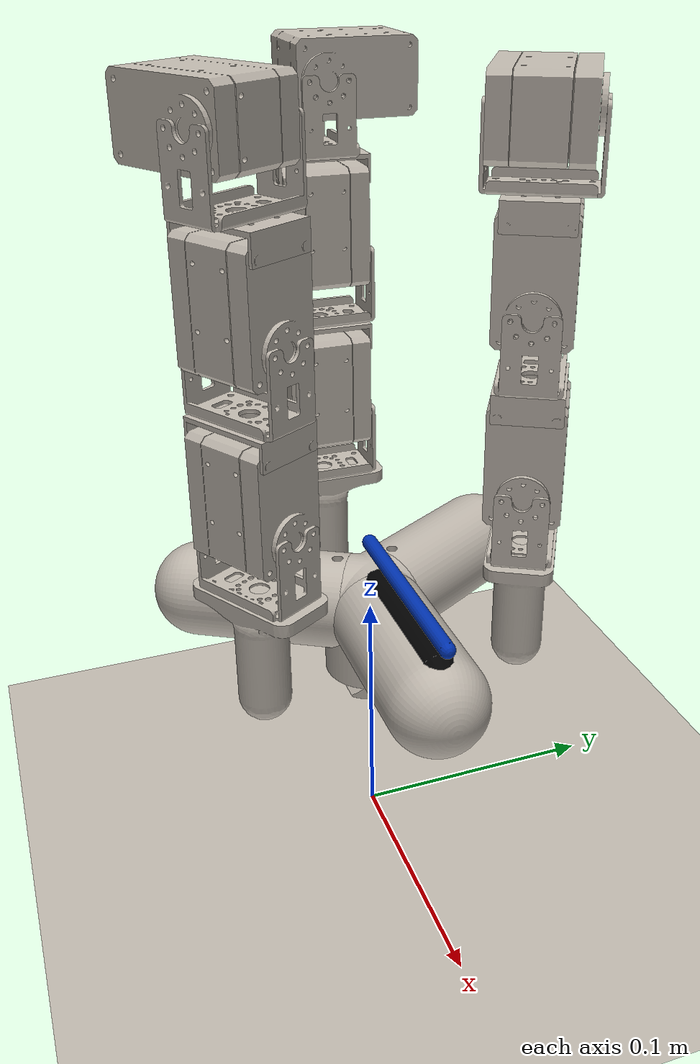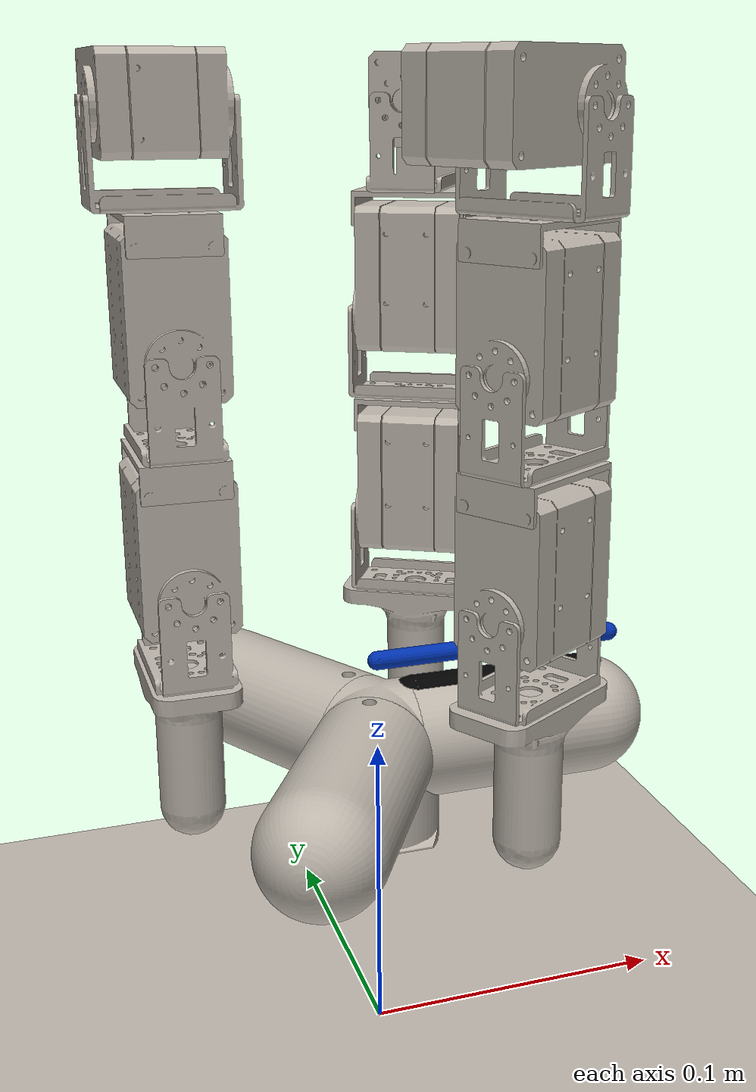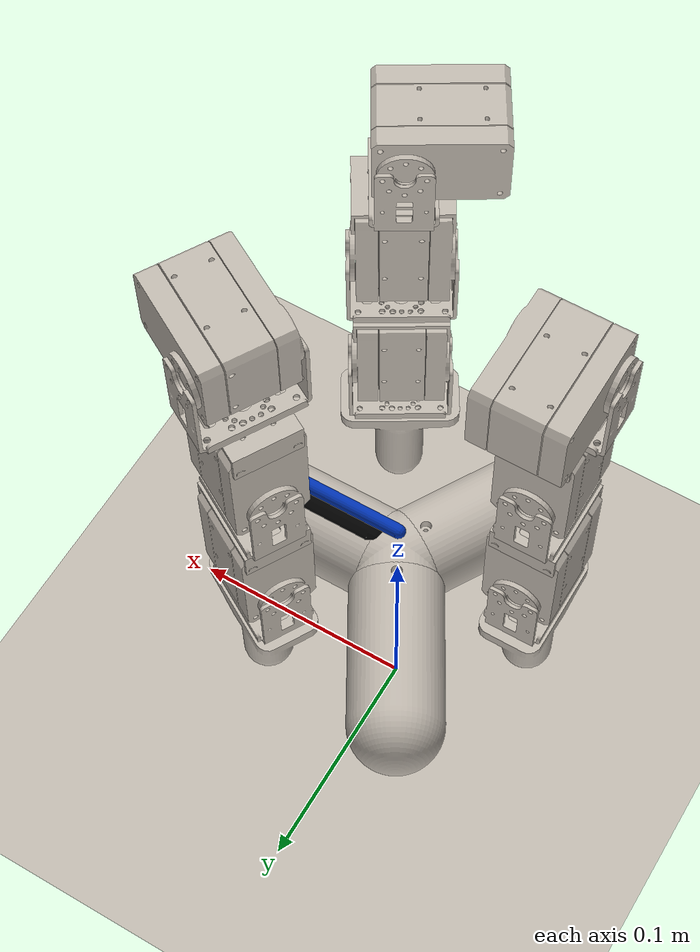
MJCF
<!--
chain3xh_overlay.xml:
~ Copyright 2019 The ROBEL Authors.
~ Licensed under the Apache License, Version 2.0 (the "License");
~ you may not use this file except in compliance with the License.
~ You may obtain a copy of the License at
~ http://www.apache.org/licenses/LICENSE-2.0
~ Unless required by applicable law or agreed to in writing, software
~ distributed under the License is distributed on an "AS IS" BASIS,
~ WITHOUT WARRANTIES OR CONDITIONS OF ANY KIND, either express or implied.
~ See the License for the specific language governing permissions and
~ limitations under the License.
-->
<?xml version="1.0"?>
<mujoco model="dclaw3xh_valve3_default">
  <include file="/scenes/scene_default.xml"/>
  <include file="/robot/assets/dependencies_3xh_position.xml"/>
  <include file="/valve/assets/dependencies_valve3.xml"/>

  <size njmax="8000" nconmax="4000"/>

  <worldbody>
    <camera name="canonical"            mode= "fixed" euler="0 0 1.5707963267948966" pos="0 0 0.4"/>
    <camera name="random"               mode= "fixed" euler="0 0 1.5707963267948966" pos="0 0 0.4"/>
    <camera name="canonical_nonfix"     mode= "fixed" euler="0 0 1.5707963267948966" pos="0 0 0.4"/>
    <camera name="random_nonfix"        mode= "fixed" euler="0 0 1.5707963267948966" pos="0 0 0.4"/>
    <camera name="canonical_overview"   mode= "fixed" euler="0 1 1.57" pos="0.3 0 0.4"/>
    <camera name="top"                  mode= "fixed" euler="0 0 1.57" pos="0 0 3"/>

    <camera name="targeting"      pos="1 1 2"     mode="targetbodycom"  target="dClaw"/>
    <camera name="object_target"  pos="0 0 0.33"  mode="targetbody"     target="object"/>
    <body name="mount" pos="0 0 0.333" euler="0 0 0">
      <include file="./robot/assets/chain3xh_default.xml"/>
      <include file="./robot/assets/chain3xh_overlay.xml"/>
    </body>
    <body name="object" pos="0 0 0.0001">
      <include file="/valve/assets/valve3_with_line.xml"/>
    </body>

  </worldbody>
</mujoco>

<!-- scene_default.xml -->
<mujocoinclude>
  <asset>
    <texture name="skybox" type="skybox" builtin="gradient" rgb1=".08 .09 .10" rgb2="0 0 0" width="800" height="800" mark="random" markrgb=".8 .8 .8"/>

    <!-- Finger 1 -->
    <texture name="FFbase_xh28_tex"                type="2d" file="./pattern/pattern_default_crop.png" rgb1="1 1 1"/>
    <texture name="FF10_xh28_tex"                  type="2d" file="./pattern/pattern_default_crop.png" rgb1="1 1 1"/>
    <texture name="FF10_metal_clamping_tex"        type="2d" file="./pattern/pattern_default_crop.png" rgb1="1 1 1"/>
    <texture name="FF10_metal_clamping_small_tex"  type="2d" file="./pattern/pattern_default_crop.png" rgb1="1 1 1"/>
    <texture name="FFL11_xh28_tex"                 type="2d" file="./pattern/pattern_default_crop.png" rgb1="1 1 1"/>
    <texture name="FFL11_metal_clamping_tex"       type="2d" file="./pattern/pattern_default_crop.png" rgb1="1 1 1"/>
    <texture name="FFL11_metal_clamping_small_tex" type="2d" file="./pattern/pattern_default_crop.png" rgb1="1 1 1"/>
    <texture name="FFL11_plastic_finger_tex"       type="2d" file="./pattern/pattern_default_crop.png" rgb1="1 1 1"/>
    <texture name="FFL12_metal_clamping_tex"       type="2d" file="./pattern/pattern_default_crop.png" rgb1="1 1 1"/>
    <texture name="FFL12_plastic_finger_tex"       type="2d" file="./pattern/pattern_default_crop.png" rgb1="1 1 1"/>
    <texture name="FFL12_optoforce_sensor_tex"     type="2d" file="./pattern/pattern_default_crop.png" rgb1="1 1 1"/>
    <texture name="FFL12_optoforce_base_tex"       type="2d" file="./pattern/pattern_default_crop.png" rgb1="1 1 1"/>
    <material name="FFbase_xh28_mat"                shininess="0.03" specular="0.75" texture="FFbase_xh28_tex"></material>
    <material name="FF10_xh28_mat"                  shininess="0.03" specular="0.75" texture="FF10_xh28_tex"></material>
    <material name="FF10_metal_clamping_mat"        shininess="0.03" specular="0.75" texture="FF10_metal_clamping_tex"></material>
    <material name="FF10_metal_clamping_small_mat"  shininess="0.03" specular="0.75" texture="FF10_metal_clamping_small_tex"></material>
    <material name="FFL11_xh28_mat"                 shininess="0.03" specular="0.75" texture="FFL11_xh28_tex"></material>
    <material name="FFL11_metal_clamping_mat"       shininess="0.03" specular="0.75" texture="FFL11_metal_clamping_tex"></material>
    <material name="FFL11_metal_clamping_small_mat" shininess="0.03" specular="0.75" texture="FFL11_metal_clamping_small_tex"></material>
    <material name="FFL11_plastic_finger_mat"       shininess="0.03" specular="0.75" texture="FFL11_plastic_finger_tex"></material>
    <material name="FFL12_metal_clamping_mat"       shininess="0.03" specular="0.75" texture="FFL12_metal_clamping_tex"></material>
    <material name="FFL12_plastic_finger_mat"       shininess="0.03" specular="0.75" texture="FFL12_plastic_finger_tex"></material>
    <material name="FFL12_optoforce_sensor_mat"     shininess="0.03" specular="0.75" texture="FFL12_optoforce_sensor_tex"></material>
    <material name="FFL12_optoforce_base_mat"       shininess="0.03" specular="0.75" texture="FFL12_optoforce_base_tex"></material>

    <!-- Finger 2 -->
    <texture name="MFbase_xh28_tex"                type="2d" file="./pattern/pattern_default_crop.png" rgb1="1 1 1"/>
    <texture name="MF20_xh28_tex"                  type="2d" file="./pattern/pattern_default_crop.png" rgb1="1 1 1"/>
    <texture name="MF20_metal_clamping_tex"        type="2d" file="./pattern/pattern_default_crop.png" rgb1="1 1 1"/>
    <texture name="MF20_metal_clamping_small_tex"  type="2d" file="./pattern/pattern_default_crop.png" rgb1="1 1 1"/>
    <texture name="MFL21_xh28_tex"                 type="2d" file="./pattern/pattern_default_crop.png" rgb1="1 1 1"/>
    <texture name="MFL21_metal_clamping_tex"       type="2d" file="./pattern/pattern_default_crop.png" rgb1="1 1 1"/>
    <texture name="MFL21_metal_clamping_small_tex" type="2d" file="./pattern/pattern_default_crop.png" rgb1="1 1 1"/>
    <texture name="MFL21_plastic_finger_tex"       type="2d" file="./pattern/pattern_default_crop.png" rgb1="1 1 1"/>
    <texture name="MFL22_metal_clamping_tex"       type="2d" file="./pattern/pattern_default_crop.png" rgb1="1 1 1"/>
    <texture name="MFL22_plastic_finger_tex"       type="2d" file="./pattern/pattern_default_crop.png" rgb1="1 1 1"/>
    <texture name="MFL22_optoforce_sensor_tex"     type="2d" file="./pattern/pattern_default_crop.png" rgb1="1 1 1"/>
    <texture name="MFL22_optoforce_base_tex"       type="2d" file="./pattern/pattern_default_crop.png" rgb1="1 1 1"/>
    <material name="MFbase_xh28_mat"                shininess="0.03" specular="0.75" texture="MFbase_xh28_tex"></material>
    <material name="MF20_xh28_mat"                  shininess="0.03" specular="0.75" texture="MF20_xh28_tex"></material>
    <material name="MF20_metal_clamping_mat"        shininess="0.03" specular="0.75" texture="MF20_metal_clamping_tex"></material>
    <material name="MF20_metal_clamping_small_mat"  shininess="0.03" specular="0.75" texture="MF20_metal_clamping_small_tex"></material>
    <material name="MFL21_xh28_mat"                 shininess="0.03" specular="0.75" texture="MFL21_xh28_tex"></material>
    <material name="MFL21_metal_clamping_mat"       shininess="0.03" specular="0.75" texture="MFL21_metal_clamping_tex"></material>
    <material name="MFL21_metal_clamping_small_mat" shininess="0.03" specular="0.75" texture="MFL21_metal_clamping_small_tex"></material>
    <material name="MFL21_plastic_finger_mat"       shininess="0.03" specular="0.75" texture="MFL21_plastic_finger_tex"></material>
    <material name="MFL22_metal_clamping_mat"       shininess="0.03" specular="0.75" texture="MFL22_metal_clamping_tex"></material>
    <material name="MFL22_plastic_finger_mat"       shininess="0.03" specular="0.75" texture="MFL22_plastic_finger_tex"></material>
    <material name="MFL22_optoforce_sensor_mat"     shininess="0.03" specular="0.75" texture="MFL22_optoforce_sensor_tex"></material>
    <material name="MFL22_optoforce_base_mat"       shininess="0.03" specular="0.75" texture="MFL22_optoforce_base_tex"></material>

    <!-- Finger 3 -->
    <texture name="THbase_xh28_tex"                type="2d" file="./pattern/pattern_default_crop.png" rgb1="1 1 1"/>
    <texture name="TH30_xh28_tex"                  type="2d" file="./pattern/pattern_default_crop.png" rgb1="1 1 1"/>
    <texture name="TH30_metal_clamping_tex"        type="2d" file="./pattern/pattern_default_crop.png" rgb1="1 1 1"/>
    <texture name="TH30_metal_clamping_small_tex"  type="2d" file="./pattern/pattern_default_crop.png" rgb1="1 1 1"/>
    <texture name="THL31_xh28_tex"                 type="2d" file="./pattern/pattern_default_crop.png" rgb1="1 1 1"/>
    <texture name="THL31_metal_clamping_tex"       type="2d" file="./pattern/pattern_default_crop.png" rgb1="1 1 1"/>
    <texture name="THL31_metal_clamping_small_tex" type="2d" file="./pattern/pattern_default_crop.png" rgb1="1 1 1"/>
    <texture name="THL31_plastic_finger_tex"       type="2d" file="./pattern/pattern_default_crop.png" rgb1="1 1 1"/>
    <texture name="THL32_metal_clamping_tex"       type="2d" file="./pattern/pattern_default_crop.png" rgb1="1 1 1"/>
    <texture name="THL32_plastic_finger_tex"       type="2d" file="./pattern/pattern_default_crop.png" rgb1="1 1 1"/>
    <texture name="THL32_optoforce_sensor_tex"     type="2d" file="./pattern/pattern_default_crop.png" rgb1="1 1 1"/>
    <texture name="THL32_optoforce_base_tex"       type="2d" file="./pattern/pattern_default_crop.png" rgb1="1 1 1"/>
    <material name="THbase_xh28_mat"                shininess="0.03" specular="0.75" texture="THbase_xh28_tex"></material>
    <material name="TH30_xh28_mat"                  shininess="0.03" specular="0.75" texture="TH30_xh28_tex"></material>
    <material name="TH30_metal_clamping_mat"        shininess="0.03" specular="0.75" texture="TH30_metal_clamping_tex"></material>
    <material name="TH30_metal_clamping_small_mat"  shininess="0.03" specular="0.75" texture="TH30_metal_clamping_small_tex"></material>
    <material name="THL31_xh28_mat"                 shininess="0.03" specular="0.75" texture="THL31_xh28_tex"></material>
    <material name="THL31_metal_clamping_mat"       shininess="0.03" specular="0.75" texture="THL31_metal_clamping_tex"></material>
    <material name="THL31_metal_clamping_small_mat" shininess="0.03" specular="0.75" texture="THL31_metal_clamping_small_tex"></material>
    <material name="THL31_plastic_finger_mat"       shininess="0.03" specular="0.75" texture="THL31_plastic_finger_tex"></material>
    <material name="THL32_metal_clamping_mat"       shininess="0.03" specular="0.75" texture="THL32_metal_clamping_tex"></material>
    <material name="THL32_plastic_finger_mat"       shininess="0.03" specular="0.75" texture="THL32_plastic_finger_tex"></material>
    <material name="THL32_optoforce_sensor_mat"     shininess="0.03" specular="0.75" texture="THL32_optoforce_sensor_tex"></material>
    <material name="THL32_optoforce_base_mat"       shininess="0.03" specular="0.75" texture="THL32_optoforce_base_tex"></material>

    <!-- xh28 -->
    <texture name="xh28_tex" type="2d" file="./pattern/pattern_default_crop.png" rgb1="1 1 1"/>
    <material name="xh28_mat" shininess="0.03" specular="0.75" texture="xh28_tex"></material>

    <!-- acrylic_circle -->
    <texture name="acrylic_circle_tex" type="2d" file="./pattern/pattern_default_crop.png" rgb1="1 1 1"/>
    <material name="acrylic_circle_mat" shininess="0.03" specular="0.75" texture="acrylic_circle_tex"></material>

    <!-- floor -->
    <texture name="floor_tex" type="2d" file="./pattern/pattern_default_crop.png" rgb1="1 1 1"/>
    <material name="floor_mat" shininess="0.03" specular="0.75" texture="floor_tex"></material>

    <!-- mount -->
    <texture name="mount_tex" type="2d" file="./pattern/pattern_default_crop.png" rgb1="1 1 1"/>
    <material name="mount_mat" shininess="0.03" specular="0.75" texture="mount_tex"></material>

    <!-- valve_3 -->
    <texture name="valve_3_tex" type="2d" file="./pattern/pattern_default_crop.png" rgb1="1 1 1"/>
    <material name="valve_3_mat" shininess="0.03" specular="0.75" texture="valve_3_tex"></material>

    <!-- valve_3 individual -->
    <texture name="valve_3fin_handle_1_tex" type="2d" file="./pattern/pattern_default_crop.png" rgb1="1 1 1"/>
    <texture name="valve_3fin_handle_2_tex" type="2d" file="./pattern/pattern_default_crop.png" rgb1="1 1 1"/>
    <texture name="valve_3fin_handle_3_tex" type="2d" file="./pattern/pattern_default_crop.png" rgb1="1 1 1"/>
    <texture name="valve_3fin_center_tex"   type="2d" file="./pattern/pattern_default_crop.png" rgb1="1 1 1"/>
    <material name="valve_3fin_handle_1_mat" shininess="0.03" specular="0.75" texture="valve_3fin_handle_1_tex"></material>
    <material name="valve_3fin_handle_2_mat" shininess="0.03" specular="0.75" texture="valve_3fin_handle_2_tex"></material>
    <material name="valve_3fin_handle_3_mat" shininess="0.03" specular="0.75" texture="valve_3fin_handle_3_tex"></material>
    <material name="valve_3fin_center_mat"   shininess="0.03" specular="0.75" texture="valve_3fin_center_tex"></material>

  </asset>

  <visual>
    <quality shadowsize="1024" offsamples="4"/>
  </visual>

  <worldbody>

    <light name="light_top_1" directional="true" diffuse=".3 .3 .3" specular="0.3 0.3 0.3" pos="-0.5 -0.5 1.0" active="false" dir="0.5 0.5 -1"/>
    <light name="light_top_2" directional="true" diffuse=".3 .3 .3" specular="0.3 0.3 0.3" pos="0.0 -0.5 1.0"  active="false" dir="0.0 0.5 -1"/>
    <light name="light_top_3" directional="true" diffuse=".3 .3 .3" specular="0.3 0.3 0.3" pos="0.5 -0.5 1.0"  active="true" dir="-0.5 0.5 -1"/>
    <light name="light_top_4" directional="true" diffuse=".3 .3 .3" specular="0.3 0.3 0.3" pos="-0.5 0.0 1.0"  active="false" dir="0.5 0 -1"/>
    <light name="light_top_5" directional="true" diffuse=".3 .3 .3" specular="0.3 0.3 0.3" pos="0.0 0.0 1.0"   active="false" dir="0 0 -1"/>
    <light name="light_top_6" directional="true" diffuse=".3 .3 .3" specular="0.3 0.3 0.3" pos="0.5 0.0 1.0"   active="false" dir="-0.5 0 -1"/>
    <light name="light_top_7" directional="true" diffuse=".3 .3 .3" specular="0.3 0.3 0.3" pos="-0.5 0.5 1.0"  active="true" dir=" 0.5 -0.5 -1"/>
    <light name="light_top_8" directional="true" diffuse=".3 .3 .3" specular="0.3 0.3 0.3" pos="0.0 0.5 1.0"   active="false" dir=" 0.0 -0.5 -1"/>
    <light name="light_top_9" directional="true" diffuse=".3 .3 .3" specular="0.3 0.3 0.3" pos="0.5 0.5 1.0"   active="false" dir="-0.5 -0.5 -1"/>

    <light name="light_side_1" directional="true" diffuse=".3 .3 .3" specular="0.3 0.3 0.3" pos="0.0 0.5 0.2"   active="false" dir=" 0.0 -0.5 0.0"/>
    <light name="light_side_2" directional="true" diffuse=".3 .3 .3" specular="0.3 0.3 0.3" pos="0.0 -0.5 0.2"  active="false" dir=" 0.0 0.5 0.0"/>
    <light name="light_side_3" directional="true" diffuse=".3 .3 .3" specular="0.3 0.3 0.3" pos="0.5 0.0 0.2"   active="false" dir="-0.5 0.0 0.0"/>
    <light name="light_side_4" directional="true" diffuse=".3 .3 .3" specular="0.3 0.3 0.3" pos="-0.5 0.0 0.2"  active="false" dir=" 0.5 0.0 0.0"/>
    <light name="light_side_5" directional="true" diffuse=".3 .3 .3" specular="0.3 0.3 0.3" pos="-0.5 0.5 0.2"  active="false" dir=" 0.5 -0.5 0.0"/>
    <light name="light_side_6" directional="true" diffuse=".3 .3 .3" specular="0.3 0.3 0.3" pos=" 0.5 -0.5 0.2" active="false" dir="-0.5 0.5 0.0"/>
    <light name="light_side_7" directional="true" diffuse=".3 .3 .3" specular="0.3 0.3 0.3" pos="-0.5 -0.5 0.2" active="false" dir=" 0.5 0.5 0.0"/>
    <light name="light_side_8" directional="true" diffuse=".3 .3 .3" specular="0.3 0.3 0.3" pos=" 0.5  0.5 0.2" active="false" dir="-0.5 -0.5 0.0"/>

    <geom name="floor" pos="0 0 0"  size="5 5 .1"       conaffinity="1" contype="1" type="plane" condim="3" material="floor_mat" />
    <site name="xaxis" pos=".5 0 0" size=".005 .5" type="capsule" rgba="1 0 0 .25" euler="0 1.57 0" group="3"/>
    <site name="yaxis" pos="0 .5 0" size=".005 .5" type="capsule" rgba="0 1 0 .25" euler="1.57 0 0" group="3"/>
  </worldbody>
</mujocoinclude>

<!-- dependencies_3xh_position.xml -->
<mujocoinclude>
  <compiler angle="radian" inertiafromgeom="auto" inertiagrouprange="3 5" />
  <option timestep="0.0025" iterations="50" tolerance="1e-10" solver="Newton" jacobian="dense" cone="elliptic"/>
  <asset>
    <mesh name="xh28"                 file="./robot/meshes/xh_base_high_poly.stl"            scale=".001 .001 .001"/>
    <mesh name="acrylic_circle"       file="./robot/meshes/acrylic_circle.stl"               scale=".1 .1 .1"/>
    <mesh name="plastic_finger"       file="./robot/meshes/xh_finger_tip.stl"                scale=".001 .001 .001"/>
    <mesh name="metal_clamping"       file="./robot/meshes/xh_clamping_high_poly.stl"        scale=".001 .001 .001"/>
    <mesh name="metal_clamping_small" file="./robot/meshes/xh_clamping_small_high_poly.stl"  scale=".001 .001 .001"/>
    <mesh name="plastic_top"          file="./robot/meshes/xh_white_top_high_poly.stl"       scale=".001 .001 .001"/>
    <mesh name="xh28_hull"            file="./robot/meshes/xh_base_hull.stl"                 scale=".001 .001 .001"/>
    <mesh name="xh28_hull_top"        file="./robot/meshes/xh_base_hull_top.stl"             scale=".001 .001 .001"/>
  </asset>
  <default>
    <default class="dclaw3xh">
      <joint limited="true" damping=".1" armature="0.001"/>
      <geom contype="0"   conaffinity="0" condim="4" group="1" margin="0.0005" material="metal_black" type="mesh"/>
      <motor ctrlrange="-1.57 1.57" ctrllimited="true"/>
      <site group="1"/>
      <default class="overlay">
        <geom contype="0" conaffinity="0" group="3" type="mesh" material="greenish"/>
        <joint damping="100" frictionloss="100" armature="0"/>
        <site group="3"/>
      </default>
      <default class="phy_metal">
        <geom contype="1" conaffinity="1" group="4" type="mesh" rgba="0.0 0.0 1.0 .3"/>
        <site group="4"/>
      </default>
      <default class="phy_plastic">
        <geom contype="1" conaffinity="1" group="4" type="mesh" rgba="0.0 0.0 1.0 .3" friction=".2 0.005 0.0001"/>
        <site group="4"/>
      </default>
    </default>
  </default>
  <asset>
    <material name="metal_black" specular="1" shininess="1" rgba="0.2 0.2 0.2 1.0"/>
    <material name="metal_grey" specular="1" shininess="1" rgba="0.5 0.5 0.5 1.0"/>
    <material name="plastic" specular="0.3" shininess="0" rgba="1 1 1 1"/>
    <material name="acrylic" specular="0.3" shininess="0" rgba="1 1 1 .2"/>
    <material name="greenish" specular="0.0" shininess="0" rgba="0.3 1 0.3 1"/>
  </asset>

  <actuator>
    <position name="FFJ10_pos_sensor" kp="2" joint="FFJ10" class="dclaw3xh"  />
    <position name="FFJ11_pos_sensor" kp="2" joint="FFJ11" class="dclaw3xh"  />
    <position name="FFJ12_pos_sensor" kp="2" joint="FFJ12" class="dclaw3xh"  />
    <position name="MFJ20_pos_sensor" kp="2" joint="MFJ20" class="dclaw3xh"  />
    <position name="MFJ21_pos_sensor" kp="2" joint="MFJ21" class="dclaw3xh"  />
    <position name="MFJ22_pos_sensor" kp="2" joint="MFJ22" class="dclaw3xh"  />
    <position name="THJ30_pos_sensor" kp="2" joint="THJ30" class="dclaw3xh"  />
    <position name="THJ31_pos_sensor" kp="2" joint="THJ31" class="dclaw3xh"  />
    <position name="THJ32_pos_sensor" kp="2" joint="THJ32" class="dclaw3xh"  />
  </actuator>

</mujocoinclude>

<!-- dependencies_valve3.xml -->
<mujocoinclude>
  <compiler angle="radian" inertiafromgeom="auto" inertiagrouprange="3 5"/>
  <option timestep="0.0025"/>
  <asset>
    <!-- mesh -->
    <mesh name="motor"                  file="./robot/meshes/xh_base_high_poly.stl"      scale=".001 .001 .001"/>
    <mesh name="motor_hull"             file="./robot/meshes/xh_base_hull.stl"           scale=".001 .001 .001"/>
    <mesh name="valve_4"                file="./valve/meshes/valve_4_high_poly.stl"      scale=".001 .001 .001"/>
    <mesh name="valve_3"                file="./valve/meshes/valve_3_high_poly.stl"      scale=".001 .001 .001"/>
    <mesh name="station_base"           file="./valve/meshes/station_plastic_base.stl"   scale=".001 .001 .001"/>
    <mesh name="station_metal_base"     file="./valve/meshes/station_metal_base.stl"     scale=".001 .001 .001"/>
    <mesh name="station_surface"        file="./valve/meshes/station_surface.stl"        scale=".001 .001 .001"/>
    <mesh name="station_plastic_walls"  file="./valve/meshes/station_plastic_walls.stl"  scale=".001 .001 .001"/>
    <!-- mesh of valve for individual handle -->
    <mesh name="valve_3fin_handle_1"  file="./valve/meshes/ROBEL_DClaw_Valve3_STLs/VALVE_3fin_1.stl"  scale=".001 .001 .001"/>
    <mesh name="valve_3fin_handle_2"  file="./valve/meshes/ROBEL_DClaw_Valve3_STLs/VALVE_3fin_2.stl"  scale=".001 .001 .001"/>
    <mesh name="valve_3fin_handle_3"  file="./valve/meshes/ROBEL_DClaw_Valve3_STLs/VALVE_3fin_3.stl"  scale=".001 .001 .001"/>
    <mesh name="valve_3fin_center"    file="./valve/meshes/ROBEL_DClaw_Valve3_STLs/VALVE_3fin_4.stl"  scale=".001 .001 .001"/>
    <!-- material -->
    <material name="station_metal_grey"   specular="1"    shininess="1" rgba="0.5 0.5 0.5 1.0"/>
    <material name="plastic_white"        specular="0.3"  shininess="0" rgba="1 1 1 1"/>
    <material name="plastic_grey"         specular="0.3"  shininess="0" rgba="0.5 0.5 0.5 1.0"/>
    <material name="plastic_black"        specular="0.3"  shininess="0" rgba="0.02 0.02 0.02 1.0"/>
    <material name="plastic_transparent"  specular="0.3"  shininess="0" rgba="1 1 1 0.4"/>
  </asset>
  <default>
    <default class="station">
      <joint limited="true" damping=".1" armature="0.001"/>
      <geom contype="1" conaffinity="1" condim="4" group="2" margin="0.0005"/>
      <site group="2"/>
      <default class="station_viz">
        <geom contype="0" conaffinity="0" type="mesh"/>
        <default class="station_viz_metal_grey">
          <geom material="station_metal_grey"/>
        </default>
        <default class="station_viz_plastic_black">
          <geom material="plastic_black"/>
        </default>
        <default class="station_viz_plastic_grey">
          <geom material="plastic_grey"/>
        </default>
        <default class="station_viz_plastic_white">
          <geom material="plastic_white"/>
        </default>
        <default class="station_viz_plastic_transparent">
          <geom material="plastic_transparent"/>
        </default>
      </default>
      <default class="station_phy">
        <geom contype="1" conaffinity="1" group="4" type="mesh" rgba="0.0 0.0 1.0 .3"/>
        <site group="4"/>
        <default class="station_phy_metal">
          <geom material="station_metal_grey"/>
        </default>
        <default class="station_phy_plastic">
          <geom material="station_metal_grey" friction=".2 0.005 0.0001"/>
        </default>
      </default>
    </default>
  </default>

  <!-- kp=2, kv=0.3 -->
  <actuator>
    <position name="valve_OBJRx_act_pos" kp="0" ctrlrange="-2.0943951023931957 2.0943951023931957" joint="valve_OBJRx" class="dclaw3xh" />
    <velocity name="valve_OBJRx_act_vel" kv="0" ctrlrange="-1 1"                                   joint="valve_OBJRx" class="dclaw3xh" />
  </actuator>

</mujocoinclude>

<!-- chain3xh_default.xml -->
<mujocoinclude>
  <body name="dClaw" euler="3.14 0 0" childclass="dclaw3xh">
    <geom class="phy_metal" type="cylinder" size="0.075 0.004" mass=".11" />
    <site name="S_grasp" pos="0 0 0.24" type="sphere" size="0.01" group="4"/>
    <!-- INDEX/FIRST FINGER -->
    <body name="FFbase" pos=".03 -0.052 .020" euler="0 0 .52">
      <geom name="FFbase_xh28" mesh="xh28" pos="0 0 0.01425" euler="1.57 0 1.57" material="FFbase_xh28_mat"/>
      <geom class="phy_metal" type="box" pos=".012 0 0.014" size="0.024 0.0175 0.015" mass=".093" />
      <body name="FF10" pos="0 0 0.01425" euler="0 0 3.14">
        <geom name="FF10_metal_clamping"        mesh="metal_clamping"                       euler="0 0 1.57"    material="FF10_metal_clamping_mat"/>
        <geom name="FF10_metal_clamping_small"  mesh="metal_clamping_small" pos="0 0 0.055" euler="3.14 0 0"    material="FF10_metal_clamping_small_mat"/>
        <geom name="FF10_xh28"                  mesh="xh28"                 pos="0 0 0.068" euler="1.57 1.57 0" material="FF10_xh28_mat"/>
        <geom class="phy_metal" type="box" pos="0 0 0.056" size="0.0175 0.015 0.024" mass=".093"     />
        <geom class="phy_metal" type="box" pos="0.0 0 0.026" size="0.0125 0.0214 0.003" mass=".003"  />
        <geom class="phy_metal" type="box" pos="0 0.02 0.013" size="0.011 0.0012 0.016" mass=".002"  />
        <geom class="phy_metal" type="box" pos="0 -0.02 0.013" size="0.011 0.0012 0.016" mass=".002" />
        <geom class="phy_metal" type="box" pos="0 0 0.033" size="0.019 0.014 0.006" mass=".005"      />
        <joint name="FFJ10" type="hinge" axis="0 1 0" range="-1.57 1.57"/>
        <body name="FFL11" pos="0 0 0.0675">
          <geom name="FFL11_metal_clamping_small" mesh="metal_clamping_small" pos="0 0 0.055"   euler="3.14 0 0"    material="FFL11_metal_clamping_small_mat"/>
          <geom name="FFL11_xh28"                 mesh="xh28"                 pos="0 0 0.0686"  euler="1.57 1.57 0" material="FFL11_xh28_mat"/>
          <geom name="FFL11_metal_clamping"       mesh="metal_clamping"                                             material="FFL11_metal_clamping_mat"/>
          <geom class="phy_metal" type="box" pos="0 0 0.056" size="0.0175 0.015 0.024" mass=".093"     />
          <geom class="phy_metal" type="box" pos="0 0 0.026" size="0.0214 0.0125 0.003" mass=".003"    />
          <geom class="phy_metal" type="box" pos="0.02 0 0.013" size="0.0012 0.011 0.016" mass=".002"  />
          <geom class="phy_metal" type="box" pos="-0.02 0 0.013" size="0.0012 0.011 0.016" mass=".002" />
          <geom class="phy_metal" type="box" pos="0 0 0.033" size="0.019 0.014 0.006" mass=".005"      />
          <joint name="FFJ11" type="hinge" axis="1 0 0" range="-1.57 1.57"/>
          <body name="FFL12" pos="0 0 0.068">
            <geom name="FFL12_metal_clamping" mesh="metal_clamping"                 material="FFL12_metal_clamping_mat"/>
            <geom name="FFL12_plastic_finger" mesh="plastic_finger" pos="0 0 0.046" material="FFL12_plastic_finger_mat"/>
            <geom class="phy_metal" type="box" pos="0.0 0 0.026" size="0.0214 0.0125 0.003" mass=".003" />
            <geom class="phy_metal" type="box" pos="0.02 0 0.013" size="0.0012 0.011 0.016" mass=".002" />
            <geom class="phy_metal" type="box" pos="-0.02 0 0.013" size="0.0012 0.011 0.016" mass=".002"/>
            <geom class="phy_plastic" type="capsule" pos="-0.00008 0.00003 0.0529"  size="0.0101 0.0195"       mass=".018"/>
            <geom class="phy_plastic" type="box"     pos="0 0 0.03"                 size="0.0241 0.0131 0.003"  mass=".007"/>
            <joint name="FFJ12" type="hinge" axis="1 0 0" range="-1.57 1.57"/>
          </body>
        </body>
      </body>
    </body>
    <!-- MIDDLE FINGER -->
    <body name="MFbase" pos=".03 0.052 .020" euler="0 0 2.6">
      <geom name="MFbase_xh28" mesh="xh28" pos="0 0 0.01425" euler="1.57 0 1.57"  material="MFbase_xh28_mat"/>
      <geom class="phy_metal" type="box" pos=".012 0 0.014" size="0.024 0.0175 0.015" mass=".093" />
      <body name="MF20" pos="0 0 0.01425" euler="0 0 3.14">
        <geom name="MF20_metal_clamping"        mesh="metal_clamping"                       euler="0 0 1.57"    material="MF20_metal_clamping_mat"/>
        <geom name="MF20_metal_clamping_small"  mesh="metal_clamping_small" pos="0 0 0.055" euler="3.14 0 0"    material="MF20_metal_clamping_small_mat"/>
        <geom name="MF20_xh28"                  mesh="xh28"                 pos="0 0 0.068" euler="1.57 1.57 0" material="MF20_xh28_mat"/>
        <geom class="phy_metal" type="box" pos="0 0 0.056" size="0.0175 0.015 0.024" mass=".093"     />
        <geom class="phy_metal" type="box" pos="0.0 0 0.026" size="0.0125 0.0214 0.003" mass=".003"  />
        <geom class="phy_metal" type="box" pos="0 0.02 0.013" size="0.011 0.0012 0.016" mass=".002"  />
        <geom class="phy_metal" type="box" pos="0 -0.02 0.013" size="0.011 0.0012 0.016" mass=".002" />
        <geom class="phy_metal" type="box" pos="0 0 0.033" size="0.019 0.014 0.006" mass=".005"      />
        <joint name="MFJ20" type="hinge" axis="0 1 0" range="-1.57 1.57"/>
        <body name="MFL21" pos="0 0 0.0675">
          <geom name="MFL21_metal_clamping_small" mesh="metal_clamping_small" pos="0 0 0.055"   euler="3.14 0 0"    material="MFL21_metal_clamping_small_mat"/>
          <geom name="MFL21_xh28"                 mesh="xh28"                 pos="0 0 0.0686"  euler="1.57 1.57 0" material="MFL21_xh28_mat"/>
          <geom name="MFL21_metal_clamping"       mesh="metal_clamping"                                             material="MFL21_metal_clamping_mat"/>
          <geom class="phy_metal" type="box" pos="0 0 0.056" size="0.0175 0.015 0.024" mass=".093"     />
          <geom class="phy_metal" type="box" pos="0 0 0.026" size="0.0214 0.0125 0.003" mass=".003"    />
          <geom class="phy_metal" type="box" pos="0.02 0 0.013" size="0.0012 0.011 0.016" mass=".002"  />
          <geom class="phy_metal" type="box" pos="-0.02 0 0.013" size="0.0012 0.011 0.016" mass=".002" />
          <geom class="phy_metal" type="box" pos="0 0 0.033" size="0.019 0.014 0.006" mass=".005"      />
          <joint name="MFJ21" type="hinge" axis="1 0 0" range="-1.57 1.57"/>
          <body name="MFL22" pos="0 0 0.068">
            <geom name="MFL22_metal_clamping" mesh="metal_clamping"                 material="MFL22_metal_clamping_mat"/>
            <geom name="MFL22_plastic_finger" mesh="plastic_finger" pos="0 0 0.046" material="MFL22_plastic_finger_mat"/>
            <geom class="phy_metal" type="box" pos="0.0 0 0.026" size="0.0214 0.0125 0.003" mass=".003" />
            <geom class="phy_metal" type="box" pos="0.02 0 0.013" size="0.0012 0.011 0.016" mass=".002" />
            <geom class="phy_metal" type="box" pos="-0.02 0 0.013" size="0.0012 0.011 0.016" mass=".002"/>
            <geom class="phy_plastic" type="capsule" pos="-0.00008 0.00003 0.0529"  size="0.0101 0.0195"       mass=".018"/>
            <geom class="phy_plastic" type="box"     pos="0 0 0.03"                 size="0.0241 0.0131 0.003"  mass=".007"/>
            <joint name="MFJ22" type="hinge" axis="1 0 0" range="-1.57 1.57"/>
          </body>
        </body>
      </body>
    </body>
    <!-- THUMB -->
    <body name="THbase" pos="-.06 0 .020" euler="0 0 -1.57">
      <geom name="THbase_xh28" mesh="xh28" pos="0 0 0.01425" euler="1.57 0 1.57" material="THbase_xh28_mat"/>
      <geom class="phy_metal" type="box" pos=".012 0 0.014" size="0.024 0.0175 0.015" mass=".093" />
      <body name="TH30" pos="0 0 0.01425" euler="0 0 3.14">
        <geom name="TH30_metal_clamping"        mesh="metal_clamping"                       euler="0 0 1.57"    material="TH30_metal_clamping_mat"/>
        <geom name="TH30_metal_clamping_small"  mesh="metal_clamping_small" pos="0 0 0.055" euler="3.14 0 0"    material="TH30_metal_clamping_small_mat"/>
        <geom name="TH30_xh28"                  mesh="xh28"                 pos="0 0 0.068" euler="1.57 1.57 0" material="TH30_xh28_mat"/>
        <geom class="phy_metal" type="box" pos="0 0 0.056" size="0.0175 0.015 0.024" mass=".093"     />
        <geom class="phy_metal" type="box" pos="0.0 0 0.026" size="0.0125 0.0214 0.003" mass=".003"  />
        <geom class="phy_metal" type="box" pos="0 0.02 0.013" size="0.011 0.0012 0.016" mass=".002"  />
        <geom class="phy_metal" type="box" pos="0 -0.02 0.013" size="0.011 0.0012 0.016" mass=".002" />
        <geom class="phy_metal" type="box" pos="0 0 0.033" size="0.019 0.014 0.006" mass=".005"      />
        <joint name="THJ30" type="hinge" axis="0 1 0" range="-1.57 1.57"/>
        <body name="THL31" pos="0 0 0.0675">
          <geom name="THL31_metal_clamping_small" mesh="metal_clamping_small" pos="0 0 0.055"   euler="3.14 0 0"    material="THL31_metal_clamping_small_mat"/>
          <geom name="THL31_xh28"                 mesh="xh28"                 pos="0 0 0.0686"  euler="1.57 1.57 0" material="THL31_xh28_mat"/>
          <geom name="THL31_metal_clamping"       mesh="metal_clamping"                                             material="THL31_metal_clamping_mat"/>
          <geom class="phy_metal" type="box" pos="0 0 0.056" size="0.0175 0.015 0.024" mass=".093"    />
          <geom class="phy_metal" type="box" pos="0 0 0.026" size="0.0214 0.0125 0.003" mass=".003"   />
          <geom class="phy_metal" type="box" pos="0.02 0 0.013" size="0.0012 0.011 0.016" mass=".002" />
          <geom class="phy_metal" type="box" pos="-0.02 0 0.013" size="0.0012 0.011 0.016" mass=".002"/>
          <geom class="phy_metal" type="box" pos="0 0 0.033" size="0.019 0.014 0.006" mass=".005"     />
          <joint name="THJ31" type="hinge" axis="1 0 0" range="-1.57 1.57"/>
          <body name="THL32" pos="0 0 0.068">
            <geom name="THL32_metal_clamping" mesh="metal_clamping"                 material="THL32_metal_clamping_mat"/>
            <geom name="THL32_plastic_finger" mesh="plastic_finger" pos="0 0 0.046" material="THL32_plastic_finger_mat"/>
            <geom class="phy_metal"   type="box"     pos="0.0 0 0.026"    size="0.0214 0.0125 0.003" mass=".003"/>
            <geom class="phy_metal"   type="box"     pos="0.02 0 0.013"   size="0.0012 0.011 0.016"  mass=".002"/>
            <geom class="phy_metal"   type="box"     pos="-0.02 0 0.013"  size="0.0012 0.011 0.016"  mass=".002"/>
            <geom class="phy_plastic" type="capsule" pos="-0.00008 0.00003 0.0529"  size="0.0101 0.0195"       mass=".018"/>
            <geom class="phy_plastic" type="box"     pos="0 0 0.03"                 size="0.0241 0.0131 0.003"  mass=".007"/>
            <joint name="THJ32" type="hinge" axis="1 0 0" range="-1.57 1.57"/>
          </body>
        </body>
      </body>
    </body>
  </body>
</mujocoinclude>

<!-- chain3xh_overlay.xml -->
<mujocoinclude>
  <body name="_dclaw" euler="3.14 0 0" childclass="overlay">
    <geom mesh="acrylic_circle"/>
    <!-- INDEX/FIRST FINGER -->
    <body name="_FFbase" pos=".03 -0.052 .003" euler="0 0 .52">
      <geom mesh="xh28" pos="0 0 0.01425" euler="1.57 0 1.57"/>
      <body name="_FF10" pos="0 0 0.01425" euler="0 0 3.14">
        <geom mesh="metal_clamping" euler="0 0 1.57"/>
        <geom mesh="metal_clamping_small" pos="0 0 0.055" euler="3.14 0 0"/>
        <geom mesh="xh28" pos="0 0 0.068" euler="1.57 1.57 0"/>
        <joint name="_FFJ10" type="hinge" axis="0 1 0" range="-.45 1.35"/>
        <body name="_FFL11" pos="0 0 0.0675">
          <geom mesh="metal_clamping_small" pos="0 0 0.055" euler="3.14 0 0"/>
          <geom mesh="xh28" pos="0 0 0.0686" euler="1.57 1.57 0"/>
          <geom mesh="metal_clamping"/>
          <joint name="_FFJ11" type="hinge" axis="1 0 0" range="-2 2"/>
          <body name="_FFL12" pos="0 0 0.068">
            <geom mesh="metal_clamping"/>
            <geom mesh="plastic_finger" pos="0 0 0.046"/>
            <joint name="_FFJ12" type="hinge" axis="1 0 0" range="-2 2"/>
            <site name="_FFtip" type="sphere" pos="0 0 .076" size="0.01" rgba="1 .3 .3 1"/>
          </body>
        </body>
      </body>
    </body>
    <!-- MIDDLE FINGER -->
    <body name="_MFbase" pos=".03 0.052 .003" euler="0 0 2.62">
      <geom mesh="xh28" pos="0 0 0.01425" euler="1.57 0 1.57"/>
      <body name="_MF20" pos="0 0 0.01425" euler="0 0 3.14">
        <geom mesh="metal_clamping" euler="0 0 1.57"/>
        <geom mesh="metal_clamping_small" pos="0 0 0.055" euler="3.14 0 0"/>
        <geom mesh="xh28" pos="0 0 0.068" euler="1.57 1.57 0"/>
        <joint name="_MFJ20" type="hinge" axis="0 1 0" range="-.45 1.35"/>
        <body name="_MFL21" pos="0 0 0.0675">
          <geom mesh="metal_clamping_small" pos="0 0 0.055" euler="3.14 0 0"/>
          <geom mesh="xh28" pos="0 0 0.0686" euler="1.57 1.57 0"/>
          <geom mesh="metal_clamping"/>
          <joint name="_MFJ21" type="hinge" axis="1 0 0" range="-2 2"/>
          <body name="_MFL22" pos="0 0 0.068">
            <geom mesh="metal_clamping"/>
            <geom mesh="plastic_finger" pos="0 0 0.046"/>
            <joint name="_MFJ22" type="hinge" axis="1 0 0" range="-2 2"/>
            <site name="_MFtip" type="sphere" pos="0 0 .076" size="0.01" rgba=".3 1 .3 1"/>
          </body>
        </body>
      </body>
    </body>
    <!-- THUMB -->
    <body name="_THbase" pos="-.06 0 .003" euler="0 0 -1.57">
      <geom mesh="xh28" pos="0 0 0.01425" euler="1.57 0 1.57"/>
      <body name="_TH30" pos="0 0 0.01425" euler="0 0 3.14">
        <geom mesh="metal_clamping" euler="0 0 1.57"/>
        <geom mesh="metal_clamping_small" pos="0 0 0.055" euler="3.14 0 0"/>
        <geom mesh="xh28" pos="0 0 0.068" euler="1.57 1.57 0"/>
        <joint name="_THJ30" type="hinge" axis="0 1 0" range="-.45 1.35"/>
        <body name="_THL31" pos="0 0 0.0675">
          <geom mesh="metal_clamping_small" pos="0 0 0.055" euler="3.14 0 0"/>
          <geom mesh="xh28" pos="0 0 0.0686" euler="1.57 1.57 0"/>
          <geom mesh="metal_clamping"/>
          <joint name="_THJ31" type="hinge" axis="1 0 0" range="-2 2"/>
          <body name="_THL32" pos="0 0 0.068">
            <geom mesh="metal_clamping"/>
            <geom mesh="plastic_finger" pos="0 0 0.046"/>
            <joint name="_THJ32" type="hinge" axis="1 0 0" range="-2 2"/>
            <site name="_THtip" type="sphere" pos="0 0 .076" size="0.01" rgba=".3 .3 1 1"/>
          </body>
        </body>
      </body>
    </body>
  </body>
</mujocoinclude>

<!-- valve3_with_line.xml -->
<mujocoinclude name="valve3_random">
  <body name="valve_base" pos=".0 0.00 0.01" euler="0 0 0" childclass="station">
    <body name="valve" pos="0 0 0.038" euler="0 0 -1.57">

      <!-- visual -->
      <geom class="station_viz_plastic_white" name="vis_valve_3fin_handle_1" mesh="valve_3fin_handle_1"  pos="0.03075 -0.0514 0.01415" euler="0 0 3.1415926535897931" material="valve_3fin_handle_1_mat"/>
      <geom class="station_viz_plastic_white" name="vis_valve_3fin_handle_2" mesh="valve_3fin_handle_2"  pos="0.03075 -0.0514 0.01415" euler="0 0 3.1415926535897931" material="valve_3fin_handle_2_mat"/>
      <geom class="station_viz_plastic_white" name="vis_valve_3fin_handle_3" mesh="valve_3fin_handle_3"  pos="0.03075 -0.0514 0.01415" euler="0 0 3.1415926535897931" material="valve_3fin_handle_3_mat"/>
      <geom class="station_viz_plastic_white" name="vis_valve_3fin_center"   mesh="valve_3fin_center"    pos="0.03075 -0.0514 0.01415" euler="0 0 3.1415926535897931" material="valve_3fin_center_mat"/>

      <site type="capsule" size=".008 0.03" pos="0 0.042 0.067" rgba="0 0 0 1" euler="1.57 0 1.57"/>

      <!-- physical -->
      <geom name="phy_valve_6_oclock"   class="station_phy_plastic"  type="capsule"  pos=" 0.0    0.040 0.054" size="0.0197 0.032"  euler="1.57 0 0"/>
      <geom name="phy_valve_2_oclock"   class="station_phy_plastic"  type="capsule"  pos="-0.034 -0.019 0.054"  size="0.0197 0.032"  euler="1.57 2.0944 0"/>
      <geom name="phy_valve_10_oclock"  class="station_phy_plastic"  type="capsule"  pos=" 0.034 -0.019 0.054"  size="0.0197 0.032"  euler="1.57 4.1887 0"/>
      <geom name="phy_valve_center"     class="station_phy_plastic"  type="cylinder" pos=" 0.0 0.0 0.027"       size="0.02 0.0275"   />

      <!-- joint -->
      <joint name="valve_OBJRx"               type="hinge"    pos="0 0 0"  axis="0 0 1" range="-6.28 6.28" damping="0.1" limited="true"/>
    </body>

    <body name="target" pos="0 0 0.12">
      <site name="tmark" type="capsule" size=".003 0.04" pos=".04 0 0" rgba="0 0.2 0.7 1" euler="0 1.57 0"/>
    </body>

  </body>
</mujocoinclude>
